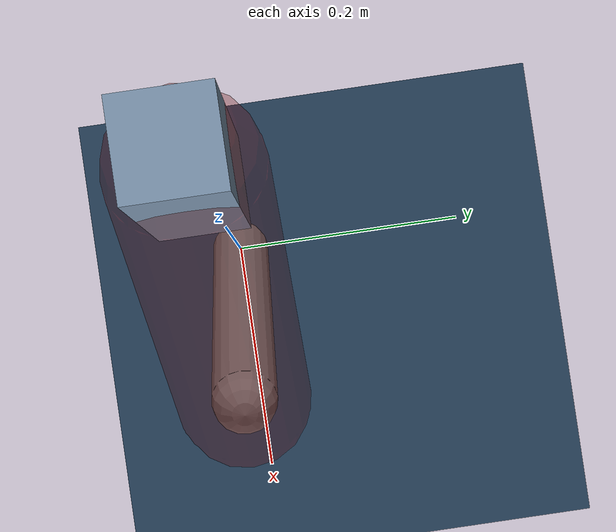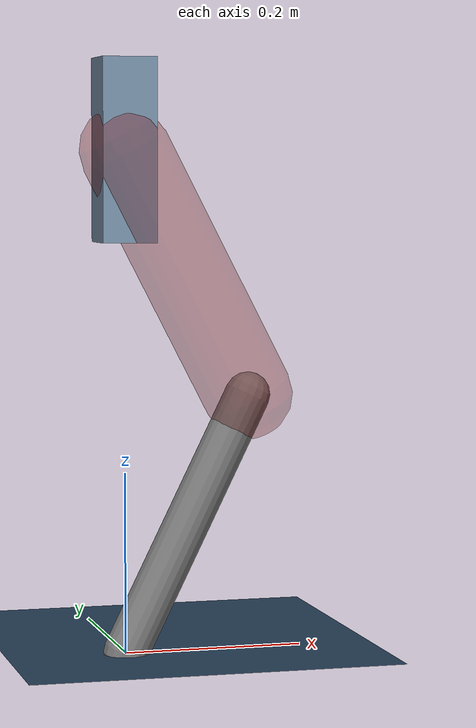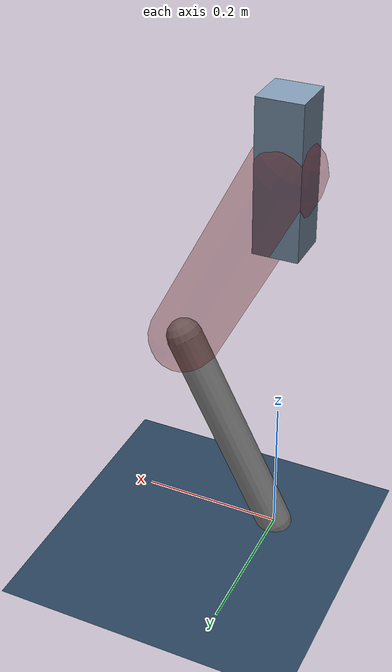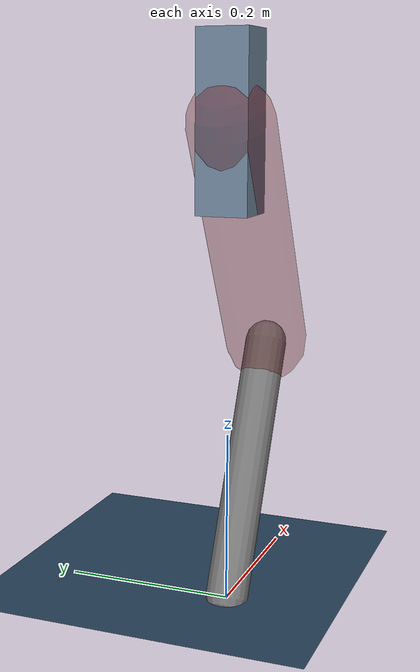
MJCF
<mujoco model="Hopper2D">
	<compiler inertiafromgeom="true" angle="radian" />
	<option timestep="0.001" integrator="implicit" cone="elliptic" solver="Newton" tolerance="1e-10" />

	<default>
		<geom contype="1" conaffinity="1" condim="3" friction="2 0.005 0.0001" solref="0.005 1" />
		<joint limited="true" damping="0.1" />
	</default>

	<asset>
		<texture name="skybox" type="skybox" builtin="gradient" rgb1=".4 .6 .8" rgb2="0 0 0" width="800" height="800" />
		<texture name="grid" type="2d" builtin="checker" rgb1=".1 .2 .3" rgb2=".2 .3 .4" width="300" height="300" mark="edge" markrgb=".2 .3 .4" />
		<material name="ground" texture="grid" texrepeat="1 1" texuniform="true" reflectance="0.1" />
		<material name="leg" rgba="0.5 0.6 0.7 1" />
	</asset>

	<worldbody>

		<geom name="floor" type="plane" size="5 5 0.25" material="ground" />

		<light directional="false" diffuse="0.8 0.8 0.8" specular="0.3 0.3 0.3" pos="0 0 2" dir="0 0 -1" />
		<light mode="targetbodycom" target="base" directional="false" diffuse="0.8 0.8 0.8" specular="0.3 0.3 0.3" pos="0 0 2" dir="0 0 -1" />

		<camera name="fixed" pos="0 -2 1" xyaxes="1 0 0 0 0 1" />
		<camera name="tracking" mode="trackcom" pos="0 -3 1" />

		<body name="root" pos="0 0 0.553428810192943">
			<joint name="slide_x" type="slide" axis="1 0 0" range="-100 100" />
			<joint name="slide_z" type="slide" axis="0 0 1" range="0 10" />

			<body name="base" pos="0 0 0">
				<geom name="torso" type="box" size="0.03 0.03 0.1" mass="2.1109999999999998" material="leg" />

				<body name="link1" pos="0 0 0" euler="0 1.092992267394481 0">
					<joint type="hinge" axis="0 -1 0" pos="0 0 0" name="hinge1" limited="true" range="-3.14 3.14" stiffness="0" damping="0.1" />
					<geom name="thigh" type="capsule" fromto="0 0 0 0.3033112267425665 0 0" size="0.05" rgba="0.5 0 0 0.3" mass="0.9977403122049295" />

					<body name="link2" pos="0.3033112267425665 0 0" euler="0 0.934184020047477 0">
						<joint type="hinge" axis="0 -1 0" pos="0 0 0" name="hinge2" limited="true" range="-3.14 3.14" stiffness="0" damping="0.1" />
						<geom name="shank" type="capsule" fromto="0 0 0 0.3164765667460072 0 0" size="0.025" mass="0.4967812533968058" />

					</body>
				</body>
			</body>
		</body>
	</worldbody>

	<actuator>
		<motor name="torque1" joint="hinge1" ctrlrange="-13.30342173371402 13.30342173371402" ctrllimited="true" gear="1" />
		<motor name="torque2" joint="hinge2" ctrlrange="-128.06684133674483 128.06684133674483" ctrllimited="true" gear="1" />
	</actuator>
</mujoco>
